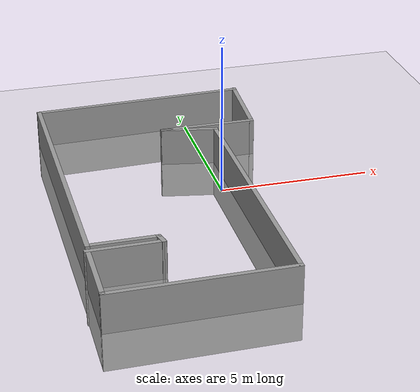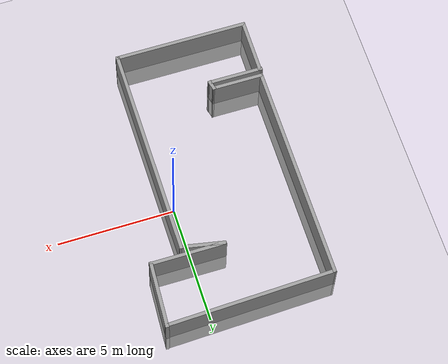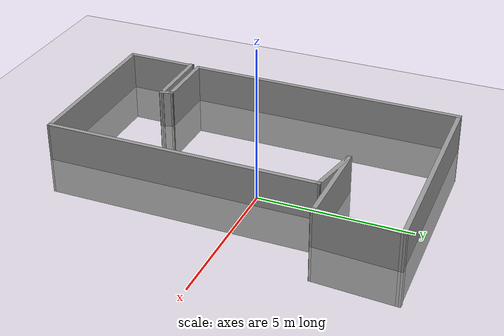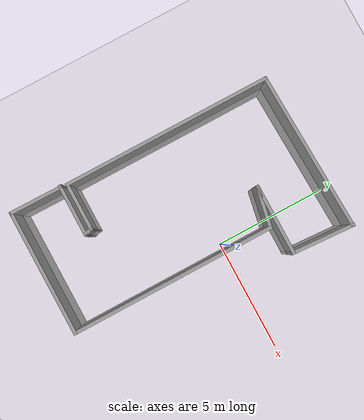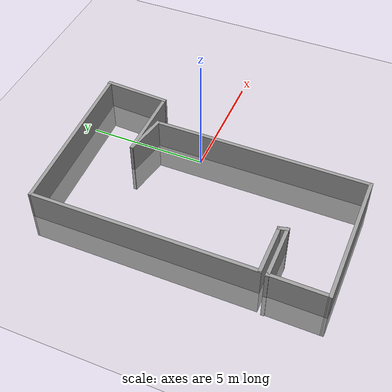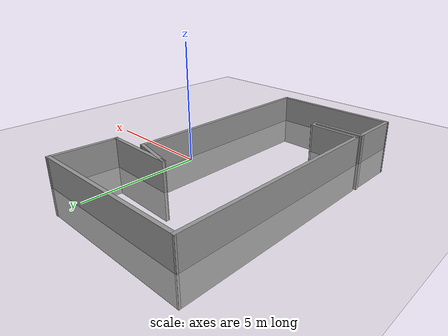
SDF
<?xml version="1.0" ?>
<sdf version="1.7">
    <world name="empty_world">
        <!-- Physics Engine Configuration -->
        <physics name="dartsim" type="dart">
            <gravity>0 0 -9.8</gravity>
            <max_step_size>0.001</max_step_size>
            <real_time_factor>1.0</real_time_factor>
            <real_time_update_rate>1000</real_time_update_rate>
        </physics>

        <!-- Plugins -->
        <plugin
            filename="libignition-gazebo-physics-system.so"
            name="ignition::gazebo::systems::Physics">
        </plugin>
        <plugin
            filename="libignition-gazebo-user-commands-system.so"
            name="ignition::gazebo::systems::UserCommands">
        </plugin>
        <plugin
            filename="libignition-gazebo-scene-broadcaster-system.so"
            name="ignition::gazebo::systems::SceneBroadcaster">
        </plugin>

        <!-- GUI Configuration -->
        <gui fullscreen="0">
            <!-- 3D Scene Plugin -->
            <plugin filename="GzScene3D" name="3D View">
                <ignition-gui>
                    <title>3D View</title>
                    <property type="bool" key="showTitleBar">false</property>
                    <property type="string" key="state">docked</property>
                </ignition-gui>
                <engine>ogre2</engine>
                <scene>scene</scene>
                <ambient_light>1.0 1.0 1.0</ambient_light>
                <background_color>0.8 0.8 0.8</background_color>
                <camera_pose>-6 0 6 0 0.5 0</camera_pose>
            </plugin>

            <!-- World Control Plugin -->
            <plugin filename="WorldControl" name="World control">
                <ignition-gui>
                    <title>World control</title>
                    <property type="bool" key="showTitleBar">false</property>
                    <property type="bool" key="resizable">false</property>
                    <property type="double" key="height">72</property>
                    <property type="double" key="width">121</property>
                    <property type="double" key="z">1</property>
                    <property type="string" key="state">floating</property>
                    <anchors target="3D View">
                        <line own="left" target="left"/>
                        <line own="bottom" target="bottom"/>
                    </anchors>
                </ignition-gui>
                <play_pause>true</play_pause>
                <step>true</step>
                <start_paused>true</start_paused>
                <service>/world/world_demo/control</service>
                <stats_topic>/world/world_demo/stats</stats_topic>
            </plugin>

            <!-- World Statistics Plugin -->
            <plugin filename="WorldStats" name="World stats">
                <ignition-gui>
                    <title>World stats</title>
                    <property type="bool" key="showTitleBar">false</property>
                    <property type="bool" key="resizable">false</property>
                    <property type="double" key="height">110</property>
                    <property type="double" key="width">290</property>
                    <property type="double" key="z">1</property>
                    <property type="string" key="state">floating</property>
                    <anchors target="3D View">
                        <line own="right" target="right"/>
                        <line own="bottom" target="bottom"/>
                    </anchors>
                </ignition-gui>
                <sim_time>true</sim_time>
                <real_time>true</real_time>
                <real_time_factor>true</real_time_factor>
                <iterations>true</iterations>
                <topic>/world/world_demo/stats</topic>
            </plugin>

            <!-- Entity Tree Plugin -->
            <plugin filename="EntityTree" name="Entity tree">
            </plugin>
        </gui>

        <!-- Directional Light Configuration -->
        <light type="directional" name="sun">
            <cast_shadows>true</cast_shadows>
            <pose>0 0 10 0 0 0</pose>
            <diffuse>0.8 0.8 0.8 1</diffuse>
            <specular>0.2 0.2 0.2 1</specular>
            <attenuation>
                <range>1000</range>
                <constant>0.9</constant>
                <linear>0.01</linear>
                <quadratic>0.001</quadratic>
            </attenuation>
            <direction>-0.5 0.1 -0.9</direction>
        </light>

        <!-- Simple Environment Model -->
        <model name="simple_env_1">
            <pose>-1.68152 -0.931703 0 0 0 0</pose>
            <static>true</static>

            <!-- Wall 1 -->
            <link name="Wall_1">
                <pose>-3.54075 1.15662 0 0 0 -1.5708</pose>
                <collision name="Wall_1_Collision">
                    <geometry>
                        <box>
                            <size>9.5 0.15 2.5</size>
                        </box>
                    </geometry>
                    <pose>0 0 1.25 0 0 0</pose>
                    <surface>
                        <contact>
                            <ode/>
                        </contact>
                        <bounce/>
                        <friction>
                            <torsional>
                                <ode/>
                            </torsional>
                            <ode/>
                        </friction>
                    </surface>
                    <max_contacts>10</max_contacts>
                </collision>
                <visual name="Wall_1_Visual">
                    <geometry>
                        <box>
                            <size>9.5 0.15 2.5</size>
                        </box>
                    </geometry>
                    <material>
                        <script>
                            <uri>https://fuel.gazebosim.org/1.0/OpenRobotics/models/Grey/material</uri>
                            <name>Gazebo/Grey</name>
                        </script>
                        <ambient>1 1 1 1</ambient>
                    </material>
                </visual>
            </link>

            <!-- Wall 2 -->
            <link name="Wall_2">
                <pose>-2.49075 -3.51838 0 0 0 0</pose>
                <collision name="Wall_2_Collision">
                    <geometry>
                        <box>
                            <size>2.25 0.15 2.5</size>
                        </box>
                    </geometry>
                    <pose>0 0 1.25 0 0 0</pose>
                    <surface>
                        <contact>
                            <ode/>
                        </contact>
                        <bounce/>
                        <friction>
                            <torsional>
                                <ode/>
                            </torsional>
                            <ode/>
                        </friction>
                    </surface>
                    <max_contacts>10</max_contacts>
                </collision>
                <visual name="Wall_2_Visual">
                    <geometry>
                        <box>
                            <size>2.25 0.15 2.5</size>
                        </box>
                    </geometry>
                    <material>
                        <script>
                            <uri>https://fuel.gazebosim.org/1.0/OpenRobotics/models/Grey/material</uri>
                            <name>Gazebo/Grey</name>
                        </script>
                        <ambient>1 1 1 1</ambient>
                    </material>
                </visual>
            </link>

            <!-- Wall 3 -->
            <link name="Wall_3">
                <pose>-1.40325 -3.66994 0 0 0 -1.32823</pose>
                <collision name="Wall_3_Collision">
                    <geometry>
                        <box>
                            <size>0.46225 0.15 2.5</size>
                        </box>
                    </geometry>
                    <pose>0 0 1.25 0 0 0</pose>
                    <surface>
                        <contact>
                            <ode/>
                        </contact>
                        <bounce/>
                        <friction>
                            <torsional>
                                <ode/>
                            </torsional>
                            <ode/>
                        </friction>
                    </surface>
                    <max_contacts>10</max_contacts>
                </collision>
                <visual name="Wall_3_Visual">
                    <geometry>
                        <box>
                            <size>0.46225 0.15 2.5</size>
                        </box>
                    </geometry>
                    <material>
                        <script>
                            <uri>https://fuel.gazebosim.org/1.0/OpenRobotics/models/Grey/material</uri>
                            <name>Gazebo/Grey</name>
                        </script>
                        <ambient>1 1 1 1</ambient>
                    </material>
                </visual>
            </link>

            <!-- Wall 4 -->
            <link name="Wall_4">
                <pose>-2.48691 -3.82149 0 0 0 3.14159</pose>
                <collision name="Wall_4_Collision">
                    <geometry>
                        <box>
                            <size>2.39232 0.15 2.5</size>
                        </box>
                    </geometry>
                    <pose>0 0 1.25 0 0 0</pose>
                    <surface>
                        <contact>
                            <ode/>
                        </contact>
                        <bounce/>
                        <friction>
                            <torsional>
                                <ode/>
                            </torsional>
                            <ode/>
                        </friction>
                    </surface>
                    <max_contacts>10</max_contacts>
                </collision>
                <visual name="Wall_4_Visual">
                    <geometry>
                        <box>
                            <size>2.39232 0.15 2.5</size>
                        </box>
                    </geometry>
                    <material>
                        <script>
                            <uri>https://fuel.gazebosim.org/1.0/OpenRobotics/models/Grey/material</uri>
                            <name>Gazebo/Grey</name>
                        </script>
                        <ambient>1 1 1 1</ambient>
                    </material>
                </visual>
            </link>

            <!-- Wall 5 -->
            <link name="Wall_5">
                <pose>-3.58255 -4.95337 0 0 0 -1.57968</pose>
                <collision name="Wall_5_Collision">
                    <geometry>
                        <box>
                            <size>2.41384 0.15 2.5</size>
                        </box>
                    </geometry>
                    <pose>0 0 1.25 0 0 0</pose>
                    <surface>
                        <contact>
                            <ode/>
                        </contact>
                        <bounce/>
                        <friction>
                            <torsional>
                                <ode/>
                            </torsional>
                            <ode/>
                        </friction>
                    </surface>
                    <max_contacts>10</max_contacts>
                </collision>
                <visual name="Wall_5_Visual">
                    <geometry>
                        <box>
                            <size>2.41384 0.15 2.5</size>
                        </box>
                    </geometry>
                    <material>
                        <script>
                            <uri>https://fuel.gazebosim.org/1.0/OpenRobotics/models/Grey/material</uri>
                            <name>Gazebo/Grey</name>
                        </script>
                        <ambient>1 1 1 1</ambient>
                    </material>
                </visual>
            </link>

            <!-- Wall 6 -->
            <link name="Wall_6">
                <pose>-0.783777 -6.11203 0 0 0 0.003131</pose>
                <collision name="Wall_6_Collision">
                    <geometry>
                        <box>
                            <size>5.76768 0.15 2.5</size>
                        </box>
                    </geometry>
                    <pose>0 0 1.25 0 0 0</pose>
                    <surface>
                        <contact>
                            <ode/>
                        </contact>
                        <bounce/>
                        <friction>
                            <torsional>
                                <ode/>
                            </torsional>
                            <ode/>
                        </friction>
                    </surface>
                    <max_contacts>10</max_contacts>
                </collision>
                <visual name="Wall_6_Visual">
                    <geometry>
                        <box>
                            <size>5.76768 0.15 2.5</size>
                        </box>
                    </geometry>
                    <material>
                        <script>
                            <uri>https://fuel.gazebosim.org/1.0/OpenRobotics/models/Grey/material</uri>
                            <name>Gazebo/Grey</name>
                        </script>
                        <ambient>1 1 1 1</ambient>
                    </material>
                </visual>
            </link>

            <!-- Wall 7 -->
            <link name="Wall_7">
                <pose>2.02505 -1.51765 0 0 0 1.5708</pose>
                <collision name="Wall_7_Collision">
                    <geometry>
                        <box>
                            <size>9.25 0.15 2.5</size>
                        </box>
                    </geometry>
                    <pose>0 0 1.25 0 0 0</pose>
                    <surface>
                        <contact>
                            <ode/>
                        </contact>
                        <bounce/>
                        <friction>
                            <torsional>
                                <ode/>
                            </torsional>
                            <ode/>
                        </friction>
                    </surface>
                    <max_contacts>10</max_contacts>
                </collision>
                <visual name="Wall_7_Visual">
                    <geometry>
                        <box>
                            <size>9.25 0.15 2.5</size>
                        </box>
                    </geometry>
                    <material>
                        <script>
                            <uri>https://fuel.gazebosim.org/1.0/OpenRobotics/models/Grey/material</uri>
                            <name>Gazebo/Grey</name>
                        </script>
                        <ambient>1 1 1 1</ambient>
                    </material>
                </visual>
            </link>

            <!-- Wall 8 -->
            <link name="Wall_8">
                <pose>1.16053 3.19787 0 0 0 2.95242</pose>
                <collision name="Wall_8_Collision">
                    <geometry>
                        <box>
                            <size>1.91045 0.15 2.5</size>
                        </box>
                    </geometry>
                    <pose>0 0 1.25 0 0 0</pose>
                    <surface>
                        <contact>
                            <ode/>
                        </contact>
                        <bounce/>
                        <friction>
                            <torsional>
                                <ode/>
                            </torsional>
                            <ode/>
                        </friction>
                    </surface>
                    <max_contacts>10</max_contacts>
                </collision>
                <visual name="Wall_8_Visual">
                    <geometry>
                        <box>
                            <size>1.91045 0.15 2.5</size>
                        </box>
                    </geometry>
                    <material>
                        <script>
                            <uri>https://fuel.gazebosim.org/1.0/OpenRobotics/models/Grey/material</uri>
                            <name>Gazebo/Grey</name>
                        </script>
                        <ambient>1 1 1 1</ambient>
                    </material>
                </visual>
            </link>

            <!-- Wall 10 -->
            <link name="Wall_10">
                <pose>1.83862 3.37682 0 0 0 0</pose>
                <collision name="Wall_10_Collision">
                    <geometry>
                        <box>
                            <size>3.25 0.15 2.5</size>
                        </box>
                    </geometry>
                    <pose>0 0 1.25 0 0 0</pose>
                    <surface>
                        <contact>
                            <ode/>
                        </contact>
                        <bounce/>
                        <friction>
                            <torsional>
                                <ode/>
                            </torsional>
                            <ode/>
                        </friction>
                    </surface>
                    <max_contacts>10</max_contacts>
                </collision>
                <visual name="Wall_10_Visual">
                    <geometry>
                        <box>
                            <size>3.25 0.15 2.5</size>
                        </box>
                    </geometry>
                    <material>
                        <script>
                            <uri>https://fuel.gazebosim.org/1.0/OpenRobotics/models/Grey/material</uri>
                            <name>Gazebo/Grey</name>
                        </script>
                        <ambient>1 1 1 1</ambient>
                    </material>
                </visual>
            </link>

            <!-- Wall 11 -->
            <link name="Wall_11">
                <pose>3.46818 4.733 0 0 0 1.51248</pose>
                <collision name="Wall_11_Collision">
                    <geometry>
                        <box>
                            <size>2.8803 0.15 2.5</size>
                        </box>
                    </geometry>
                    <pose>0 0 1.25 0 0 0</pose>
                    <surface>
                        <contact>
                            <ode/>
                        </contact>
                        <bounce/>
                        <friction>
                            <torsional>
                                <ode/>
                            </torsional>
                            <ode/>
                        </friction>
                    </surface>
                    <max_contacts>10</max_contacts>
                </collision>
                <visual name="Wall_11_Visual">
                    <geometry>
                        <box>
                            <size>2.8803 0.15 2.5</size>
                        </box>
                    </geometry>
                    <material>
                        <script>
                            <uri>https://fuel.gazebosim.org/1.0/OpenRobotics/models/Grey/material</uri>
                            <name>Gazebo/Grey</name>
                        </script>
                        <ambient>1 1 1 1</ambient>
                    </material>
                </visual>
            </link>

            <!-- Wall 12 -->
            <link name="Wall_12">
                <pose>0.003497 5.95355 0 0 0 -3.1072</pose>
                <collision name="Wall_12_Collision">
                    <geometry>
                        <box>
                            <size>7.2427 0.15 2.5</size>
                        </box>
                    </geometry>
                    <pose>0 0 1.25 0 0 0</pose>
                    <surface>
                        <contact>
                            <ode/>
                        </contact>
                        <bounce/>
                        <friction>
                            <torsional>
                                <ode/>
                            </torsional>
                            <ode/>
                        </friction>
                    </surface>
                    <max_contacts>10</max_contacts>
                </collision>
                <visual name="Wall_12_Visual">
                    <geometry>
                        <box>
                            <size>7.2427 0.15 2.5</size>
                        </box>
                    </geometry>
                    <material>
                        <script>
                            <uri>https://fuel.gazebosim.org/1.0/OpenRobotics/models/Grey/material</uri>
                            <name>Gazebo/Grey</name>
                        </script>
                        <ambient>1 1 1 1</ambient>
                    </material>
                </visual>
            </link>
        </model>

        <!-- Optional: Ground Plane (if needed) -->
        <model name="ground_plane">
            <pose>0 0 0 0 0 0</pose>
            <static>true</static>
            <link name="link">
                <collision name="collision">
                    <geometry>
                        <plane>
                            <normal>0 0 1</normal>
                            <size>100 100</size>
                        </plane>
                    </geometry>
                    <surface>
                        <contact>
                            <ode/>
                        </contact>
                        <friction>
                            <ode>
                                <mu>100</mu>
                                <mu2>50</mu2>
                            </ode>
                            <torsional>
                                <ode/>
                            </torsional>
                        </friction>
                        <bounce/>
                    </surface>
                    <max_contacts>10</max_contacts>
                </collision>
                <visual name="visual">
                    <geometry>
                        <plane>
                            <normal>0 0 1</normal>
                            <size>100 100</size>
                        </plane>
                    </geometry>
                    <material>
                        <script>
                            <uri>https://fuel.gazebosim.org/1.0/OpenRobotics/models/GroundPlane/material</uri>
                            <name>Gazebo/Grey</name>
                        </script>
                    </material>
                </visual>
            </link>
        </model>
    </world>
</sdf>
